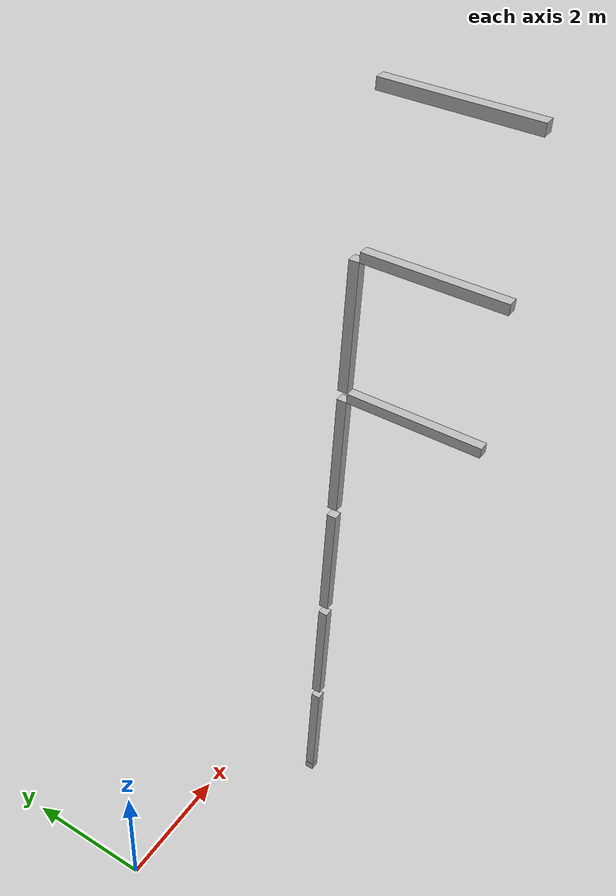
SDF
<sdf version="1.7">
 <world name="default">
  <model name="orthogonal_747_2.000.15_TS">
   <static>1</static>
   <link name="u_link_0_2_5">
    <inertial>
     <mass>1</mass>
     <inertia>
      <ixx>0.166667</ixx>
      <ixy>0</ixy>
      <ixz>0</ixz>
      <iyy>0.166667</iyy>
      <iyz>0</iyz>
      <izz>0.166667</izz>
     </inertia>
    </inertial>
    <pose>10.75 4.3 1.075 0 -0 0</pose>
    <visual name="visual_0">
     <laser_retro>442</laser_retro>
     <geometry><box><size>0.15 1e-06 0.15</size></box></geometry>
     <material>
      <script><name>Gazebo/Grey</name><uri>file://media/materials/scripts/gazebo.material</uri></script>
      <shader type="pixel"><normal_map>__default__</normal_map></shader>
      <ambient>0.678 0.498 0.659 1</ambient>
      <diffuse>0.7 0.7 0.7 1</diffuse>
      <specular>0.01 0.01 0.01 1</specular>
      <emissive>0 0 0 1</emissive>
     </material>
     <pose>0 -0.075 0 0 -0 0</pose>
     <transparency>1</transparency>
    </visual>
    <visual name="visual_1">
     <laser_retro>443</laser_retro>
     <geometry><box><size>0.15 1e-06 0.15</size></box></geometry>
     <material>
      <script><name>Gazebo/Grey</name><uri>file://media/materials/scripts/gazebo.material</uri></script>
      <shader type="pixel"><normal_map>__default__</normal_map></shader>
      <ambient>0.447 0.624 0.812 1</ambient>
      <diffuse>0.7 0.7 0.7 1</diffuse>
      <specular>0.01 0.01 0.01 1</specular>
      <emissive>0 0 0 1</emissive>
     </material>
     <pose>0 0.075 0 0 -0 0</pose>
     <transparency>1</transparency>
    </visual>
    <visual name="visual_2">
     <laser_retro>444</laser_retro>
     <geometry><box><size>0.15 0.15 1e-06</size></box></geometry>
     <material>
      <script><name>Gazebo/Grey</name><uri>file://media/materials/scripts/gazebo.material</uri></script>
      <shader type="pixel"><normal_map>__default__</normal_map></shader>
      <ambient>0.988 0.686 0.243 1</ambient>
      <diffuse>0.7 0.7 0.7 1</diffuse>
      <specular>0.01 0.01 0.01 1</specular>
      <emissive>0 0 0 1</emissive>
     </material>
     <pose>0 0 -0.075 0 -0 0</pose>
     <transparency>1</transparency>
    </visual>
    <visual name="visual_3">
     <laser_retro>445</laser_retro>
     <geometry><box><size>1e-06 0.15 0.15</size></box></geometry>
     <material>
      <script><name>Gazebo/Grey</name><uri>file://media/materials/scripts/gazebo.material</uri></script>
      <shader type="pixel"><normal_map>__default__</normal_map></shader>
      <ambient>0.988 0.914 0.31 1</ambient>
      <diffuse>0.7 0.7 0.7 1</diffuse>
      <specular>0.01 0.01 0.01 1</specular>
      <emissive>0 0 0 1</emissive>
     </material>
     <pose>0.075 0 0 0 -0 0</pose>
     <transparency>1</transparency>
    </visual>
    <visual name="visual_4">
     <laser_retro>446</laser_retro>
     <geometry><box><size>0.15 0.15 1e-06</size></box></geometry>
     <material>
      <script><name>Gazebo/Grey</name><uri>file://media/materials/scripts/gazebo.material</uri></script>
      <shader type="pixel"><normal_map>__default__</normal_map></shader>
      <ambient>0.937 0.161 0.161 1</ambient>
      <diffuse>0.7 0.7 0.7 1</diffuse>
      <specular>0.01 0.01 0.01 1</specular>
      <emissive>0 0 0 1</emissive>
     </material>
     <pose>0 0 0.075 0 -0 0</pose>
     <transparency>1</transparency>
    </visual>
    <visual name="visual_5">
     <laser_retro>447</laser_retro>
     <geometry><box><size>1e-06 0.15 0.15</size></box></geometry>
     <material>
      <script><name>Gazebo/Grey</name><uri>file://media/materials/scripts/gazebo.material</uri></script>
      <shader type="pixel"><normal_map>__default__</normal_map></shader>
      <ambient>0.541 0.886 0.204 1</ambient>
      <diffuse>0.7 0.7 0.7 1</diffuse>
      <specular>0.01 0.01 0.01 1</specular>
      <emissive>0 0 0 1</emissive>
     </material>
     <pose>-0.075 0 0 0 -0 0</pose>
     <transparency>1</transparency>
    </visual>
    <visual name="visual_texture">
     <geometry><box><size>0.149985 0.149985 0.149985</size></box></geometry>
     <material>
      <script>
       <uri>model://BASE_MODELS/simple_block_v2_textured/materials/scripts</uri>
       <uri>model://BASE_MODELS/simple_block_v2_textured/materials/textures</uri>
       <name>metal</name>
      </script>
     </material>
     <laser_retro>448</laser_retro>
    </visual>
    <collision name="collision">
     <geometry><box><size>0.15 0.15 0.15</size></box></geometry>
     <surface>
      <friction>
       <ode><mu>1</mu><mu2>1</mu2><fdir1>0 0 0</fdir1><slip1>0</slip1><slip2>0</slip2></ode>
       <torsional>
        <coefficient>1</coefficient>
        <patch_radius>0</patch_radius>
        <surface_radius>0</surface_radius>
        <use_patch_radius>1</use_patch_radius>
        <ode><slip>0</slip></ode>
       </torsional>
      </friction>
      <bounce><restitution_coefficient>0</restitution_coefficient><threshold>1e+06</threshold></bounce>
      <contact>
       <collide_without_contact>0</collide_without_contact>
       <collide_without_contact_bitmask>1</collide_without_contact_bitmask>
       <collide_bitmask>1</collide_bitmask>
       <ode>
        <soft_cfm>0</soft_cfm>
        <soft_erp>0.2</soft_erp>
        <kp>1e+13</kp>
        <kd>1</kd>
        <max_vel>0.01</max_vel>
        <min_depth>0</min_depth>
       </ode>
       <bullet>
        <split_impulse>1</split_impulse>
        <split_impulse_penetration_threshold>-0.01</split_impulse_penetration_threshold>
        <soft_cfm>0</soft_cfm>
        <soft_erp>0.2</soft_erp>
        <kp>1e+13</kp>
        <kd>1</kd>
       </bullet>
      </contact>
     </surface>
    </collision>
   </link>
   <link name="z_link_1_2_5">
    <inertial>
     <mass>1</mass>
     <inertia>
      <ixx>0.166667</ixx>
      <ixy>0</ixy>
      <ixz>0</ixz>
      <iyy>0.166667</iyy>
      <iyz>0</iyz>
      <izz>0.166667</izz>
     </inertia>
    </inertial>
    <pose>10.75 4.3 2.15 0 -0 0</pose>
    <visual name="visual_0">
     <laser_retro>1268</laser_retro>
     <geometry><box><size>0.15 1e-06 2</size></box></geometry>
     <material>
      <script><name>Gazebo/Grey</name><uri>file://media/materials/scripts/gazebo.material</uri></script>
      <shader type="pixel"><normal_map>__default__</normal_map></shader>
      <ambient>0.678 0.498 0.659 1</ambient>
      <diffuse>0.7 0.7 0.7 1</diffuse>
      <specular>0.01 0.01 0.01 1</specular>
      <emissive>0 0 0 1</emissive>
     </material>
     <pose>0 -0.075 0 0 -0 0</pose>
     <transparency>1</transparency>
    </visual>
    <visual name="visual_1">
     <laser_retro>1269</laser_retro>
     <geometry><box><size>0.15 1e-06 2</size></box></geometry>
     <material>
      <script><name>Gazebo/Grey</name><uri>file://media/materials/scripts/gazebo.material</uri></script>
      <shader type="pixel"><normal_map>__default__</normal_map></shader>
      <ambient>0.447 0.624 0.812 1</ambient>
      <diffuse>0.7 0.7 0.7 1</diffuse>
      <specular>0.01 0.01 0.01 1</specular>
      <emissive>0 0 0 1</emissive>
     </material>
     <pose>0 0.075 0 0 -0 0</pose>
     <transparency>1</transparency>
    </visual>
    <visual name="visual_2">
     <laser_retro>1270</laser_retro>
     <geometry><box><size>0.15 0.15 1e-06</size></box></geometry>
     <material>
      <script><name>Gazebo/Grey</name><uri>file://media/materials/scripts/gazebo.material</uri></script>
      <shader type="pixel"><normal_map>__default__</normal_map></shader>
      <ambient>0.988 0.686 0.243 1</ambient>
      <diffuse>0.7 0.7 0.7 1</diffuse>
      <specular>0.01 0.01 0.01 1</specular>
      <emissive>0 0 0 1</emissive>
     </material>
     <pose>0 0 -1 0 -0 0</pose>
     <transparency>1</transparency>
    </visual>
    <visual name="visual_3">
     <laser_retro>1271</laser_retro>
     <geometry><box><size>1e-06 0.15 2</size></box></geometry>
     <material>
      <script><name>Gazebo/Grey</name><uri>file://media/materials/scripts/gazebo.material</uri></script>
      <shader type="pixel"><normal_map>__default__</normal_map></shader>
      <ambient>0.988 0.914 0.31 1</ambient>
      <diffuse>0.7 0.7 0.7 1</diffuse>
      <specular>0.01 0.01 0.01 1</specular>
      <emissive>0 0 0 1</emissive>
     </material>
     <pose>0.075 0 0 0 -0 0</pose>
     <transparency>1</transparency>
    </visual>
    <visual name="visual_4">
     <laser_retro>1272</laser_retro>
     <geometry><box><size>0.15 0.15 1e-06</size></box></geometry>
     <material>
      <script><name>Gazebo/Grey</name><uri>file://media/materials/scripts/gazebo.material</uri></script>
      <shader type="pixel"><normal_map>__default__</normal_map></shader>
      <ambient>0.937 0.161 0.161 1</ambient>
      <diffuse>0.7 0.7 0.7 1</diffuse>
      <specular>0.01 0.01 0.01 1</specular>
      <emissive>0 0 0 1</emissive>
     </material>
     <pose>0 0 1 0 -0 0</pose>
     <transparency>1</transparency>
    </visual>
    <visual name="visual_5">
     <laser_retro>1273</laser_retro>
     <geometry><box><size>1e-06 0.15 2</size></box></geometry>
     <material>
      <script><name>Gazebo/Grey</name><uri>file://media/materials/scripts/gazebo.material</uri></script>
      <shader type="pixel"><normal_map>__default__</normal_map></shader>
      <ambient>0.541 0.886 0.204 1</ambient>
      <diffuse>0.7 0.7 0.7 1</diffuse>
      <specular>0.01 0.01 0.01 1</specular>
      <emissive>0 0 0 1</emissive>
     </material>
     <pose>-0.075 0 0 0 -0 0</pose>
     <transparency>1</transparency>
    </visual>
    <visual name="visual_texture">
     <geometry><box><size>0.149985 0.149985 1.9998</size></box></geometry>
     <material>
      <script>
       <uri>model://BASE_MODELS/simple_block_v2_textured/materials/scripts</uri>
       <uri>model://BASE_MODELS/simple_block_v2_textured/materials/textures</uri>
       <name>metal</name>
      </script>
     </material>
     <laser_retro>1274</laser_retro>
    </visual>
    <collision name="collision">
     <geometry><box><size>0.15 0.15 2</size></box></geometry>
     <surface>
      <friction>
       <ode><mu>1</mu><mu2>1</mu2><fdir1>0 0 0</fdir1><slip1>0</slip1><slip2>0</slip2></ode>
       <torsional>
        <coefficient>1</coefficient>
        <patch_radius>0</patch_radius>
        <surface_radius>0</surface_radius>
        <use_patch_radius>1</use_patch_radius>
        <ode><slip>0</slip></ode>
       </torsional>
      </friction>
      <bounce><restitution_coefficient>0</restitution_coefficient><threshold>1e+06</threshold></bounce>
      <contact>
       <collide_without_contact>0</collide_without_contact>
       <collide_without_contact_bitmask>1</collide_without_contact_bitmask>
       <collide_bitmask>1</collide_bitmask>
       <ode>
        <soft_cfm>0</soft_cfm>
        <soft_erp>0.2</soft_erp>
        <kp>1e+13</kp>
        <kd>1</kd>
        <max_vel>0.01</max_vel>
        <min_depth>0</min_depth>
       </ode>
       <bullet>
        <split_impulse>1</split_impulse>
        <split_impulse_penetration_threshold>-0.01</split_impulse_penetration_threshold>
        <soft_cfm>0</soft_cfm>
        <soft_erp>0.2</soft_erp>
        <kp>1e+13</kp>
        <kd>1</kd>
       </bullet>
      </contact>
     </surface>
    </collision>
   </link>
   <link name="z_link_2_2_5">
    <inertial>
     <mass>1</mass>
     <inertia>
      <ixx>0.166667</ixx>
      <ixy>0</ixy>
      <ixz>0</ixz>
      <iyy>0.166667</iyy>
      <iyz>0</iyz>
      <izz>0.166667</izz>
     </inertia>
    </inertial>
    <pose>10.75 4.3 4.3 0 -0 0</pose>
    <visual name="visual_0">
     <laser_retro>2171</laser_retro>
     <geometry><box><size>0.15 1e-06 2</size></box></geometry>
     <material>
      <script><name>Gazebo/Grey</name><uri>file://media/materials/scripts/gazebo.material</uri></script>
      <shader type="pixel"><normal_map>__default__</normal_map></shader>
      <ambient>0.678 0.498 0.659 1</ambient>
      <diffuse>0.7 0.7 0.7 1</diffuse>
      <specular>0.01 0.01 0.01 1</specular>
      <emissive>0 0 0 1</emissive>
     </material>
     <pose>0 -0.075 0 0 -0 0</pose>
     <transparency>1</transparency>
    </visual>
    <visual name="visual_1">
     <laser_retro>2172</laser_retro>
     <geometry><box><size>0.15 1e-06 2</size></box></geometry>
     <material>
      <script><name>Gazebo/Grey</name><uri>file://media/materials/scripts/gazebo.material</uri></script>
      <shader type="pixel"><normal_map>__default__</normal_map></shader>
      <ambient>0.447 0.624 0.812 1</ambient>
      <diffuse>0.7 0.7 0.7 1</diffuse>
      <specular>0.01 0.01 0.01 1</specular>
      <emissive>0 0 0 1</emissive>
     </material>
     <pose>0 0.075 0 0 -0 0</pose>
     <transparency>1</transparency>
    </visual>
    <visual name="visual_2">
     <laser_retro>2173</laser_retro>
     <geometry><box><size>0.15 0.15 1e-06</size></box></geometry>
     <material>
      <script><name>Gazebo/Grey</name><uri>file://media/materials/scripts/gazebo.material</uri></script>
      <shader type="pixel"><normal_map>__default__</normal_map></shader>
      <ambient>0.988 0.686 0.243 1</ambient>
      <diffuse>0.7 0.7 0.7 1</diffuse>
      <specular>0.01 0.01 0.01 1</specular>
      <emissive>0 0 0 1</emissive>
     </material>
     <pose>0 0 -1 0 -0 0</pose>
     <transparency>1</transparency>
    </visual>
    <visual name="visual_3">
     <laser_retro>2174</laser_retro>
     <geometry><box><size>1e-06 0.15 2</size></box></geometry>
     <material>
      <script><name>Gazebo/Grey</name><uri>file://media/materials/scripts/gazebo.material</uri></script>
      <shader type="pixel"><normal_map>__default__</normal_map></shader>
      <ambient>0.988 0.914 0.31 1</ambient>
      <diffuse>0.7 0.7 0.7 1</diffuse>
      <specular>0.01 0.01 0.01 1</specular>
      <emissive>0 0 0 1</emissive>
     </material>
     <pose>0.075 0 0 0 -0 0</pose>
     <transparency>1</transparency>
    </visual>
    <visual name="visual_4">
     <laser_retro>2175</laser_retro>
     <geometry><box><size>0.15 0.15 1e-06</size></box></geometry>
     <material>
      <script><name>Gazebo/Grey</name><uri>file://media/materials/scripts/gazebo.material</uri></script>
      <shader type="pixel"><normal_map>__default__</normal_map></shader>
      <ambient>0.937 0.161 0.161 1</ambient>
      <diffuse>0.7 0.7 0.7 1</diffuse>
      <specular>0.01 0.01 0.01 1</specular>
      <emissive>0 0 0 1</emissive>
     </material>
     <pose>0 0 1 0 -0 0</pose>
     <transparency>1</transparency>
    </visual>
    <visual name="visual_5">
     <laser_retro>2176</laser_retro>
     <geometry><box><size>1e-06 0.15 2</size></box></geometry>
     <material>
      <script><name>Gazebo/Grey</name><uri>file://media/materials/scripts/gazebo.material</uri></script>
      <shader type="pixel"><normal_map>__default__</normal_map></shader>
      <ambient>0.541 0.886 0.204 1</ambient>
      <diffuse>0.7 0.7 0.7 1</diffuse>
      <specular>0.01 0.01 0.01 1</specular>
      <emissive>0 0 0 1</emissive>
     </material>
     <pose>-0.075 0 0 0 -0 0</pose>
     <transparency>1</transparency>
    </visual>
    <visual name="visual_texture">
     <geometry><box><size>0.149985 0.149985 1.9998</size></box></geometry>
     <material>
      <script>
       <uri>model://BASE_MODELS/simple_block_v2_textured/materials/scripts</uri>
       <uri>model://BASE_MODELS/simple_block_v2_textured/materials/textures</uri>
       <name>metal</name>
      </script>
     </material>
     <laser_retro>2177</laser_retro>
    </visual>
    <collision name="collision">
     <geometry><box><size>0.15 0.15 2</size></box></geometry>
     <surface>
      <friction>
       <ode><mu>1</mu><mu2>1</mu2><fdir1>0 0 0</fdir1><slip1>0</slip1><slip2>0</slip2></ode>
       <torsional>
        <coefficient>1</coefficient>
        <patch_radius>0</patch_radius>
        <surface_radius>0</surface_radius>
        <use_patch_radius>1</use_patch_radius>
        <ode><slip>0</slip></ode>
       </torsional>
      </friction>
      <bounce><restitution_coefficient>0</restitution_coefficient><threshold>1e+06</threshold></bounce>
      <contact>
       <collide_without_contact>0</collide_without_contact>
       <collide_without_contact_bitmask>1</collide_without_contact_bitmask>
       <collide_bitmask>1</collide_bitmask>
       <ode>
        <soft_cfm>0</soft_cfm>
        <soft_erp>0.2</soft_erp>
        <kp>1e+13</kp>
        <kd>1</kd>
        <max_vel>0.01</max_vel>
        <min_depth>0</min_depth>
       </ode>
       <bullet>
        <split_impulse>1</split_impulse>
        <split_impulse_penetration_threshold>-0.01</split_impulse_penetration_threshold>
        <soft_cfm>0</soft_cfm>
        <soft_erp>0.2</soft_erp>
        <kp>1e+13</kp>
        <kd>1</kd>
       </bullet>
      </contact>
     </surface>
    </collision>
   </link>
   <link name="z_link_3_2_5">
    <inertial>
     <mass>1</mass>
     <inertia>
      <ixx>0.166667</ixx>
      <ixy>0</ixy>
      <ixz>0</ixz>
      <iyy>0.166667</iyy>
      <iyz>0</iyz>
      <izz>0.166667</izz>
     </inertia>
    </inertial>
    <pose>10.75 4.3 6.45 0 -0 0</pose>
    <visual name="visual_0">
     <laser_retro>3074</laser_retro>
     <geometry><box><size>0.15 1e-06 2</size></box></geometry>
     <material>
      <script><name>Gazebo/Grey</name><uri>file://media/materials/scripts/gazebo.material</uri></script>
      <shader type="pixel"><normal_map>__default__</normal_map></shader>
      <ambient>0.678 0.498 0.659 1</ambient>
      <diffuse>0.7 0.7 0.7 1</diffuse>
      <specular>0.01 0.01 0.01 1</specular>
      <emissive>0 0 0 1</emissive>
     </material>
     <pose>0 -0.075 0 0 -0 0</pose>
     <transparency>1</transparency>
    </visual>
    <visual name="visual_1">
     <laser_retro>3075</laser_retro>
     <geometry><box><size>0.15 1e-06 2</size></box></geometry>
     <material>
      <script><name>Gazebo/Grey</name><uri>file://media/materials/scripts/gazebo.material</uri></script>
      <shader type="pixel"><normal_map>__default__</normal_map></shader>
      <ambient>0.447 0.624 0.812 1</ambient>
      <diffuse>0.7 0.7 0.7 1</diffuse>
      <specular>0.01 0.01 0.01 1</specular>
      <emissive>0 0 0 1</emissive>
     </material>
     <pose>0 0.075 0 0 -0 0</pose>
     <transparency>1</transparency>
    </visual>
    <visual name="visual_2">
     <laser_retro>3076</laser_retro>
     <geometry><box><size>0.15 0.15 1e-06</size></box></geometry>
     <material>
      <script><name>Gazebo/Grey</name><uri>file://media/materials/scripts/gazebo.material</uri></script>
      <shader type="pixel"><normal_map>__default__</normal_map></shader>
      <ambient>0.988 0.686 0.243 1</ambient>
      <diffuse>0.7 0.7 0.7 1</diffuse>
      <specular>0.01 0.01 0.01 1</specular>
      <emissive>0 0 0 1</emissive>
     </material>
     <pose>0 0 -1 0 -0 0</pose>
     <transparency>1</transparency>
    </visual>
    <visual name="visual_3">
     <laser_retro>3077</laser_retro>
     <geometry><box><size>1e-06 0.15 2</size></box></geometry>
     <material>
      <script><name>Gazebo/Grey</name><uri>file://media/materials/scripts/gazebo.material</uri></script>
      <shader type="pixel"><normal_map>__default__</normal_map></shader>
      <ambient>0.988 0.914 0.31 1</ambient>
      <diffuse>0.7 0.7 0.7 1</diffuse>
      <specular>0.01 0.01 0.01 1</specular>
      <emissive>0 0 0 1</emissive>
     </material>
     <pose>0.075 0 0 0 -0 0</pose>
     <transparency>1</transparency>
    </visual>
    <visual name="visual_4">
     <laser_retro>3078</laser_retro>
     <geometry><box><size>0.15 0.15 1e-06</size></box></geometry>
     <material>
      <script><name>Gazebo/Grey</name><uri>file://media/materials/scripts/gazebo.material</uri></script>
      <shader type="pixel"><normal_map>__default__</normal_map></shader>
      <ambient>0.937 0.161 0.161 1</ambient>
      <diffuse>0.7 0.7 0.7 1</diffuse>
      <specular>0.01 0.01 0.01 1</specular>
      <emissive>0 0 0 1</emissive>
     </material>
     <pose>0 0 1 0 -0 0</pose>
     <transparency>1</transparency>
    </visual>
    <visual name="visual_5">
     <laser_retro>3079</laser_retro>
     <geometry><box><size>1e-06 0.15 2</size></box></geometry>
     <material>
      <script><name>Gazebo/Grey</name><uri>file://media/materials/scripts/gazebo.material</uri></script>
      <shader type="pixel"><normal_map>__default__</normal_map></shader>
      <ambient>0.541 0.886 0.204 1</ambient>
      <diffuse>0.7 0.7 0.7 1</diffuse>
      <specular>0.01 0.01 0.01 1</specular>
      <emissive>0 0 0 1</emissive>
     </material>
     <pose>-0.075 0 0 0 -0 0</pose>
     <transparency>1</transparency>
    </visual>
    <visual name="visual_texture">
     <geometry><box><size>0.149985 0.149985 1.9998</size></box></geometry>
     <material>
      <script>
       <uri>model://BASE_MODELS/simple_block_v2_textured/materials/scripts</uri>
       <uri>model://BASE_MODELS/simple_block_v2_textured/materials/textures</uri>
       <name>metal</name>
      </script>
     </material>
     <laser_retro>3080</laser_retro>
    </visual>
    <collision name="collision">
     <geometry><box><size>0.15 0.15 2</size></box></geometry>
     <surface>
      <friction>
       <ode><mu>1</mu><mu2>1</mu2><fdir1>0 0 0</fdir1><slip1>0</slip1><slip2>0</slip2></ode>
       <torsional>
        <coefficient>1</coefficient>
        <patch_radius>0</patch_radius>
        <surface_radius>0</surface_radius>
        <use_patch_radius>1</use_patch_radius>
        <ode><slip>0</slip></ode>
       </torsional>
      </friction>
      <bounce><restitution_coefficient>0</restitution_coefficient><threshold>1e+06</threshold></bounce>
      <contact>
       <collide_without_contact>0</collide_without_contact>
       <collide_without_contact_bitmask>1</collide_without_contact_bitmask>
       <collide_bitmask>1</collide_bitmask>
       <ode>
        <soft_cfm>0</soft_cfm>
        <soft_erp>0.2</soft_erp>
        <kp>1e+13</kp>
        <kd>1</kd>
        <max_vel>0.01</max_vel>
        <min_depth>0</min_depth>
       </ode>
       <bullet>
        <split_impulse>1</split_impulse>
        <split_impulse_penetration_threshold>-0.01</split_impulse_penetration_threshold>
        <soft_cfm>0</soft_cfm>
        <soft_erp>0.2</soft_erp>
        <kp>1e+13</kp>
        <kd>1</kd>
       </bullet>
      </contact>
     </surface>
    </collision>
   </link>
   <link name="y_link_4_1_5">
    <inertial>
     <mass>1</mass>
     <inertia>
      <ixx>0.166667</ixx>
      <ixy>0</ixy>
      <ixz>0</ixz>
      <iyy>0.166667</iyy>
      <iyz>0</iyz>
      <izz>0.166667</izz>
     </inertia>
    </inertial>
    <pose>10.75 3.225 9.675 0 -0 0</pose>
    <visual name="visual_0">
     <laser_retro>3795</laser_retro>
     <geometry><box><size>0.15 1e-06 0.15</size></box></geometry>
     <material>
      <script><name>Gazebo/Grey</name><uri>file://media/materials/scripts/gazebo.material</uri></script>
      <shader type="pixel"><normal_map>__default__</normal_map></shader>
      <ambient>0.678 0.498 0.659 1</ambient>
      <diffuse>0.7 0.7 0.7 1</diffuse>
      <specular>0.01 0.01 0.01 1</specular>
      <emissive>0 0 0 1</emissive>
     </material>
     <pose>0 -1 0 0 -0 0</pose>
     <transparency>1</transparency>
    </visual>
    <visual name="visual_1">
     <laser_retro>3796</laser_retro>
     <geometry><box><size>0.15 1e-06 0.15</size></box></geometry>
     <material>
      <script><name>Gazebo/Grey</name><uri>file://media/materials/scripts/gazebo.material</uri></script>
      <shader type="pixel"><normal_map>__default__</normal_map></shader>
      <ambient>0.447 0.624 0.812 1</ambient>
      <diffuse>0.7 0.7 0.7 1</diffuse>
      <specular>0.01 0.01 0.01 1</specular>
      <emissive>0 0 0 1</emissive>
     </material>
     <pose>0 1 0 0 -0 0</pose>
     <transparency>1</transparency>
    </visual>
    <visual name="visual_2">
     <laser_retro>3797</laser_retro>
     <geometry><box><size>0.15 2 1e-06</size></box></geometry>
     <material>
      <script><name>Gazebo/Grey</name><uri>file://media/materials/scripts/gazebo.material</uri></script>
      <shader type="pixel"><normal_map>__default__</normal_map></shader>
      <ambient>0.988 0.686 0.243 1</ambient>
      <diffuse>0.7 0.7 0.7 1</diffuse>
      <specular>0.01 0.01 0.01 1</specular>
      <emissive>0 0 0 1</emissive>
     </material>
     <pose>0 0 -0.075 0 -0 0</pose>
     <transparency>1</transparency>
    </visual>
    <visual name="visual_3">
     <laser_retro>3798</laser_retro>
     <geometry><box><size>1e-06 2 0.15</size></box></geometry>
     <material>
      <script><name>Gazebo/Grey</name><uri>file://media/materials/scripts/gazebo.material</uri></script>
      <shader type="pixel"><normal_map>__default__</normal_map></shader>
      <ambient>0.988 0.914 0.31 1</ambient>
      <diffuse>0.7 0.7 0.7 1</diffuse>
      <specular>0.01 0.01 0.01 1</specular>
      <emissive>0 0 0 1</emissive>
     </material>
     <pose>0.075 0 0 0 -0 0</pose>
     <transparency>1</transparency>
    </visual>
    <visual name="visual_4">
     <laser_retro>3799</laser_retro>
     <geometry><box><size>0.15 2 1e-06</size></box></geometry>
     <material>
      <script><name>Gazebo/Grey</name><uri>file://media/materials/scripts/gazebo.material</uri></script>
      <shader type="pixel"><normal_map>__default__</normal_map></shader>
      <ambient>0.937 0.161 0.161 1</ambient>
      <diffuse>0.7 0.7 0.7 1</diffuse>
      <specular>0.01 0.01 0.01 1</specular>
      <emissive>0 0 0 1</emissive>
     </material>
     <pose>0 0 0.075 0 -0 0</pose>
     <transparency>1</transparency>
    </visual>
    <visual name="visual_5">
     <laser_retro>3800</laser_retro>
     <geometry><box><size>1e-06 2 0.15</size></box></geometry>
     <material>
      <script><name>Gazebo/Grey</name><uri>file://media/materials/scripts/gazebo.material</uri></script>
      <shader type="pixel"><normal_map>__default__</normal_map></shader>
      <ambient>0.541 0.886 0.204 1</ambient>
      <diffuse>0.7 0.7 0.7 1</diffuse>
      <specular>0.01 0.01 0.01 1</specular>
      <emissive>0 0 0 1</emissive>
     </material>
     <pose>-0.075 0 0 0 -0 0</pose>
     <transparency>1</transparency>
    </visual>
    <visual name="visual_texture">
     <geometry><box><size>0.149985 1.9998 0.149985</size></box></geometry>
     <material>
      <script>
       <uri>model://BASE_MODELS/simple_block_v2_textured/materials/scripts</uri>
       <uri>model://BASE_MODELS/simple_block_v2_textured/materials/textures</uri>
       <name>metal</name>
      </script>
     </material>
     <laser_retro>3801</laser_retro>
    </visual>
    <collision name="collision">
     <geometry><box><size>0.15 2 0.15</size></box></geometry>
     <surface>
      <friction>
       <ode><mu>1</mu><mu2>1</mu2><fdir1>0 0 0</fdir1><slip1>0</slip1><slip2>0</slip2></ode>
       <torsional>
        <coefficient>1</coefficient>
        <patch_radius>0</patch_radius>
        <surface_radius>0</surface_radius>
        <use_patch_radius>1</use_patch_radius>
        <ode><slip>0</slip></ode>
       </torsional>
      </friction>
      <bounce><restitution_coefficient>0</restitution_coefficient><threshold>1e+06</threshold></bounce>
      <contact>
       <collide_without_contact>0</collide_without_contact>
       <collide_without_contact_bitmask>1</collide_without_contact_bitmask>
       <collide_bitmask>1</collide_bitmask>
       <ode>
        <soft_cfm>0</soft_cfm>
        <soft_erp>0.2</soft_erp>
        <kp>1e+13</kp>
        <kd>1</kd>
        <max_vel>0.01</max_vel>
        <min_depth>0</min_depth>
       </ode>
       <bullet>
        <split_impulse>1</split_impulse>
        <split_impulse_penetration_threshold>-0.01</split_impulse_penetration_threshold>
        <soft_cfm>0</soft_cfm>
        <soft_erp>0.2</soft_erp>
        <kp>1e+13</kp>
        <kd>1</kd>
       </bullet>
      </contact>
     </surface>
    </collision>
   </link>
   <link name="z_link_4_2_5">
    <inertial>
     <mass>1</mass>
     <inertia>
      <ixx>0.166667</ixx>
      <ixy>0</ixy>
      <ixz>0</ixz>
      <iyy>0.166667</iyy>
      <iyz>0</iyz>
      <izz>0.166667</izz>
     </inertia>
    </inertial>
    <pose>10.75 4.3 8.6 0 -0 0</pose>
    <visual name="visual_0">
     <laser_retro>3977</laser_retro>
     <geometry><box><size>0.15 1e-06 2</size></box></geometry>
     <material>
      <script><name>Gazebo/Grey</name><uri>file://media/materials/scripts/gazebo.material</uri></script>
      <shader type="pixel"><normal_map>__default__</normal_map></shader>
      <ambient>0.678 0.498 0.659 1</ambient>
      <diffuse>0.7 0.7 0.7 1</diffuse>
      <specular>0.01 0.01 0.01 1</specular>
      <emissive>0 0 0 1</emissive>
     </material>
     <pose>0 -0.075 0 0 -0 0</pose>
     <transparency>1</transparency>
    </visual>
    <visual name="visual_1">
     <laser_retro>3978</laser_retro>
     <geometry><box><size>0.15 1e-06 2</size></box></geometry>
     <material>
      <script><name>Gazebo/Grey</name><uri>file://media/materials/scripts/gazebo.material</uri></script>
      <shader type="pixel"><normal_map>__default__</normal_map></shader>
      <ambient>0.447 0.624 0.812 1</ambient>
      <diffuse>0.7 0.7 0.7 1</diffuse>
      <specular>0.01 0.01 0.01 1</specular>
      <emissive>0 0 0 1</emissive>
     </material>
     <pose>0 0.075 0 0 -0 0</pose>
     <transparency>1</transparency>
    </visual>
    <visual name="visual_2">
     <laser_retro>3979</laser_retro>
     <geometry><box><size>0.15 0.15 1e-06</size></box></geometry>
     <material>
      <script><name>Gazebo/Grey</name><uri>file://media/materials/scripts/gazebo.material</uri></script>
      <shader type="pixel"><normal_map>__default__</normal_map></shader>
      <ambient>0.988 0.686 0.243 1</ambient>
      <diffuse>0.7 0.7 0.7 1</diffuse>
      <specular>0.01 0.01 0.01 1</specular>
      <emissive>0 0 0 1</emissive>
     </material>
     <pose>0 0 -1 0 -0 0</pose>
     <transparency>1</transparency>
    </visual>
    <visual name="visual_3">
     <laser_retro>3980</laser_retro>
     <geometry><box><size>1e-06 0.15 2</size></box></geometry>
     <material>
      <script><name>Gazebo/Grey</name><uri>file://media/materials/scripts/gazebo.material</uri></script>
      <shader type="pixel"><normal_map>__default__</normal_map></shader>
      <ambient>0.988 0.914 0.31 1</ambient>
      <diffuse>0.7 0.7 0.7 1</diffuse>
      <specular>0.01 0.01 0.01 1</specular>
      <emissive>0 0 0 1</emissive>
     </material>
     <pose>0.075 0 0 0 -0 0</pose>
     <transparency>1</transparency>
    </visual>
    <visual name="visual_4">
     <laser_retro>3981</laser_retro>
     <geometry><box><size>0.15 0.15 1e-06</size></box></geometry>
     <material>
      <script><name>Gazebo/Grey</name><uri>file://media/materials/scripts/gazebo.material</uri></script>
      <shader type="pixel"><normal_map>__default__</normal_map></shader>
      <ambient>0.937 0.161 0.161 1</ambient>
      <diffuse>0.7 0.7 0.7 1</diffuse>
      <specular>0.01 0.01 0.01 1</specular>
      <emissive>0 0 0 1</emissive>
     </material>
     <pose>0 0 1 0 -0 0</pose>
     <transparency>1</transparency>
    </visual>
    <visual name="visual_5">
     <laser_retro>3982</laser_retro>
     <geometry><box><size>1e-06 0.15 2</size></box></geometry>
     <material>
      <script><name>Gazebo/Grey</name><uri>file://media/materials/scripts/gazebo.material</uri></script>
      <shader type="pixel"><normal_map>__default__</normal_map></shader>
      <ambient>0.541 0.886 0.204 1</ambient>
      <diffuse>0.7 0.7 0.7 1</diffuse>
      <specular>0.01 0.01 0.01 1</specular>
      <emissive>0 0 0 1</emissive>
     </material>
     <pose>-0.075 0 0 0 -0 0</pose>
     <transparency>1</transparency>
    </visual>
    <visual name="visual_texture">
     <geometry><box><size>0.149985 0.149985 1.9998</size></box></geometry>
     <material>
      <script>
       <uri>model://BASE_MODELS/simple_block_v2_textured/materials/scripts</uri>
       <uri>model://BASE_MODELS/simple_block_v2_textured/materials/textures</uri>
       <name>metal</name>
      </script>
     </material>
     <laser_retro>3983</laser_retro>
    </visual>
    <collision name="collision">
     <geometry><box><size>0.15 0.15 2</size></box></geometry>
     <surface>
      <friction>
       <ode><mu>1</mu><mu2>1</mu2><fdir1>0 0 0</fdir1><slip1>0</slip1><slip2>0</slip2></ode>
       <torsional>
        <coefficient>1</coefficient>
        <patch_radius>0</patch_radius>
        <surface_radius>0</surface_radius>
        <use_patch_radius>1</use_patch_radius>
        <ode><slip>0</slip></ode>
       </torsional>
      </friction>
      <bounce><restitution_coefficient>0</restitution_coefficient><threshold>1e+06</threshold></bounce>
      <contact>
       <collide_without_contact>0</collide_without_contact>
       <collide_without_contact_bitmask>1</collide_without_contact_bitmask>
       <collide_bitmask>1</collide_bitmask>
       <ode>
        <soft_cfm>0</soft_cfm>
        <soft_erp>0.2</soft_erp>
        <kp>1e+13</kp>
        <kd>1</kd>
        <max_vel>0.01</max_vel>
        <min_depth>0</min_depth>
       </ode>
       <bullet>
        <split_impulse>1</split_impulse>
        <split_impulse_penetration_threshold>-0.01</split_impulse_penetration_threshold>
        <soft_cfm>0</soft_cfm>
        <soft_erp>0.2</soft_erp>
        <kp>1e+13</kp>
        <kd>1</kd>
       </bullet>
      </contact>
     </surface>
    </collision>
   </link>
   <link name="y_link_5_1_5">
    <inertial>
     <mass>1</mass>
     <inertia>
      <ixx>0.166667</ixx>
      <ixy>0</ixy>
      <ixz>0</ixz>
      <iyy>0.166667</iyy>
      <iyz>0</iyz>
      <izz>0.166667</izz>
     </inertia>
    </inertial>
    <pose>10.75 3.225 11.825 0 -0 0</pose>
    <visual name="visual_0">
     <laser_retro>4698</laser_retro>
     <geometry><box><size>0.15 1e-06 0.15</size></box></geometry>
     <material>
      <script><name>Gazebo/Grey</name><uri>file://media/materials/scripts/gazebo.material</uri></script>
      <shader type="pixel"><normal_map>__default__</normal_map></shader>
      <ambient>0.678 0.498 0.659 1</ambient>
      <diffuse>0.7 0.7 0.7 1</diffuse>
      <specular>0.01 0.01 0.01 1</specular>
      <emissive>0 0 0 1</emissive>
     </material>
     <pose>0 -1 0 0 -0 0</pose>
     <transparency>1</transparency>
    </visual>
    <visual name="visual_1">
     <laser_retro>4699</laser_retro>
     <geometry><box><size>0.15 1e-06 0.15</size></box></geometry>
     <material>
      <script><name>Gazebo/Grey</name><uri>file://media/materials/scripts/gazebo.material</uri></script>
      <shader type="pixel"><normal_map>__default__</normal_map></shader>
      <ambient>0.447 0.624 0.812 1</ambient>
      <diffuse>0.7 0.7 0.7 1</diffuse>
      <specular>0.01 0.01 0.01 1</specular>
      <emissive>0 0 0 1</emissive>
     </material>
     <pose>0 1 0 0 -0 0</pose>
     <transparency>1</transparency>
    </visual>
    <visual name="visual_2">
     <laser_retro>4700</laser_retro>
     <geometry><box><size>0.15 2 1e-06</size></box></geometry>
     <material>
      <script><name>Gazebo/Grey</name><uri>file://media/materials/scripts/gazebo.material</uri></script>
      <shader type="pixel"><normal_map>__default__</normal_map></shader>
      <ambient>0.988 0.686 0.243 1</ambient>
      <diffuse>0.7 0.7 0.7 1</diffuse>
      <specular>0.01 0.01 0.01 1</specular>
      <emissive>0 0 0 1</emissive>
     </material>
     <pose>0 0 -0.075 0 -0 0</pose>
     <transparency>1</transparency>
    </visual>
    <visual name="visual_3">
     <laser_retro>4701</laser_retro>
     <geometry><box><size>1e-06 2 0.15</size></box></geometry>
     <material>
      <script><name>Gazebo/Grey</name><uri>file://media/materials/scripts/gazebo.material</uri></script>
      <shader type="pixel"><normal_map>__default__</normal_map></shader>
      <ambient>0.988 0.914 0.31 1</ambient>
      <diffuse>0.7 0.7 0.7 1</diffuse>
      <specular>0.01 0.01 0.01 1</specular>
      <emissive>0 0 0 1</emissive>
     </material>
     <pose>0.075 0 0 0 -0 0</pose>
     <transparency>1</transparency>
    </visual>
    <visual name="visual_4">
     <laser_retro>4702</laser_retro>
     <geometry><box><size>0.15 2 1e-06</size></box></geometry>
     <material>
      <script><name>Gazebo/Grey</name><uri>file://media/materials/scripts/gazebo.material</uri></script>
      <shader type="pixel"><normal_map>__default__</normal_map></shader>
      <ambient>0.937 0.161 0.161 1</ambient>
      <diffuse>0.7 0.7 0.7 1</diffuse>
      <specular>0.01 0.01 0.01 1</specular>
      <emissive>0 0 0 1</emissive>
     </material>
     <pose>0 0 0.075 0 -0 0</pose>
     <transparency>1</transparency>
    </visual>
    <visual name="visual_5">
     <laser_retro>4703</laser_retro>
     <geometry><box><size>1e-06 2 0.15</size></box></geometry>
     <material>
      <script><name>Gazebo/Grey</name><uri>file://media/materials/scripts/gazebo.material</uri></script>
      <shader type="pixel"><normal_map>__default__</normal_map></shader>
      <ambient>0.541 0.886 0.204 1</ambient>
      <diffuse>0.7 0.7 0.7 1</diffuse>
      <specular>0.01 0.01 0.01 1</specular>
      <emissive>0 0 0 1</emissive>
     </material>
     <pose>-0.075 0 0 0 -0 0</pose>
     <transparency>1</transparency>
    </visual>
    <visual name="visual_texture">
     <geometry><box><size>0.149985 1.9998 0.149985</size></box></geometry>
     <material>
      <script>
       <uri>model://BASE_MODELS/simple_block_v2_textured/materials/scripts</uri>
       <uri>model://BASE_MODELS/simple_block_v2_textured/materials/textures</uri>
       <name>metal</name>
      </script>
     </material>
     <laser_retro>4704</laser_retro>
    </visual>
    <collision name="collision">
     <geometry><box><size>0.15 2 0.15</size></box></geometry>
     <surface>
      <friction>
       <ode><mu>1</mu><mu2>1</mu2><fdir1>0 0 0</fdir1><slip1>0</slip1><slip2>0</slip2></ode>
       <torsional>
        <coefficient>1</coefficient>
        <patch_radius>0</patch_radius>
        <surface_radius>0</surface_radius>
        <use_patch_radius>1</use_patch_radius>
        <ode><slip>0</slip></ode>
       </torsional>
      </friction>
      <bounce><restitution_coefficient>0</restitution_coefficient><threshold>1e+06</threshold></bounce>
      <contact>
       <collide_without_contact>0</collide_without_contact>
       <collide_without_contact_bitmask>1</collide_without_contact_bitmask>
       <collide_bitmask>1</collide_bitmask>
       <ode>
        <soft_cfm>0</soft_cfm>
        <soft_erp>0.2</soft_erp>
        <kp>1e+13</kp>
        <kd>1</kd>
        <max_vel>0.01</max_vel>
        <min_depth>0</min_depth>
       </ode>
       <bullet>
        <split_impulse>1</split_impulse>
        <split_impulse_penetration_threshold>-0.01</split_impulse_penetration_threshold>
        <soft_cfm>0</soft_cfm>
        <soft_erp>0.2</soft_erp>
        <kp>1e+13</kp>
        <kd>1</kd>
       </bullet>
      </contact>
     </surface>
    </collision>
   </link>
   <link name="z_link_5_2_5">
    <inertial>
     <mass>1</mass>
     <inertia>
      <ixx>0.166667</ixx>
      <ixy>0</ixy>
      <ixz>0</ixz>
      <iyy>0.166667</iyy>
      <iyz>0</iyz>
      <izz>0.166667</izz>
     </inertia>
    </inertial>
    <pose>10.75 4.3 10.75 0 -0 0</pose>
    <visual name="visual_0">
     <laser_retro>4880</laser_retro>
     <geometry><box><size>0.15 1e-06 2</size></box></geometry>
     <material>
      <script><name>Gazebo/Grey</name><uri>file://media/materials/scripts/gazebo.material</uri></script>
      <shader type="pixel"><normal_map>__default__</normal_map></shader>
      <ambient>0.678 0.498 0.659 1</ambient>
      <diffuse>0.7 0.7 0.7 1</diffuse>
      <specular>0.01 0.01 0.01 1</specular>
      <emissive>0 0 0 1</emissive>
     </material>
     <pose>0 -0.075 0 0 -0 0</pose>
     <transparency>1</transparency>
    </visual>
    <visual name="visual_1">
     <laser_retro>4881</laser_retro>
     <geometry><box><size>0.15 1e-06 2</size></box></geometry>
     <material>
      <script><name>Gazebo/Grey</name><uri>file://media/materials/scripts/gazebo.material</uri></script>
      <shader type="pixel"><normal_map>__default__</normal_map></shader>
      <ambient>0.447 0.624 0.812 1</ambient>
      <diffuse>0.7 0.7 0.7 1</diffuse>
      <specular>0.01 0.01 0.01 1</specular>
      <emissive>0 0 0 1</emissive>
     </material>
     <pose>0 0.075 0 0 -0 0</pose>
     <transparency>1</transparency>
    </visual>
    <visual name="visual_2">
     <laser_retro>4882</laser_retro>
     <geometry><box><size>0.15 0.15 1e-06</size></box></geometry>
     <material>
      <script><name>Gazebo/Grey</name><uri>file://media/materials/scripts/gazebo.material</uri></script>
      <shader type="pixel"><normal_map>__default__</normal_map></shader>
      <ambient>0.988 0.686 0.243 1</ambient>
      <diffuse>0.7 0.7 0.7 1</diffuse>
      <specular>0.01 0.01 0.01 1</specular>
      <emissive>0 0 0 1</emissive>
     </material>
     <pose>0 0 -1 0 -0 0</pose>
     <transparency>1</transparency>
    </visual>
    <visual name="visual_3">
     <laser_retro>4883</laser_retro>
     <geometry><box><size>1e-06 0.15 2</size></box></geometry>
     <material>
      <script><name>Gazebo/Grey</name><uri>file://media/materials/scripts/gazebo.material</uri></script>
      <shader type="pixel"><normal_map>__default__</normal_map></shader>
      <ambient>0.988 0.914 0.31 1</ambient>
      <diffuse>0.7 0.7 0.7 1</diffuse>
      <specular>0.01 0.01 0.01 1</specular>
      <emissive>0 0 0 1</emissive>
     </material>
     <pose>0.075 0 0 0 -0 0</pose>
     <transparency>1</transparency>
    </visual>
    <visual name="visual_4">
     <laser_retro>4884</laser_retro>
     <geometry><box><size>0.15 0.15 1e-06</size></box></geometry>
     <material>
      <script><name>Gazebo/Grey</name><uri>file://media/materials/scripts/gazebo.material</uri></script>
      <shader type="pixel"><normal_map>__default__</normal_map></shader>
      <ambient>0.937 0.161 0.161 1</ambient>
      <diffuse>0.7 0.7 0.7 1</diffuse>
      <specular>0.01 0.01 0.01 1</specular>
      <emissive>0 0 0 1</emissive>
     </material>
     <pose>0 0 1 0 -0 0</pose>
     <transparency>1</transparency>
    </visual>
    <visual name="visual_5">
     <laser_retro>4885</laser_retro>
     <geometry><box><size>1e-06 0.15 2</size></box></geometry>
     <material>
      <script><name>Gazebo/Grey</name><uri>file://media/materials/scripts/gazebo.material</uri></script>
      <shader type="pixel"><normal_map>__default__</normal_map></shader>
      <ambient>0.541 0.886 0.204 1</ambient>
      <diffuse>0.7 0.7 0.7 1</diffuse>
      <specular>0.01 0.01 0.01 1</specular>
      <emissive>0 0 0 1</emissive>
     </material>
     <pose>-0.075 0 0 0 -0 0</pose>
     <transparency>1</transparency>
    </visual>
    <visual name="visual_texture">
     <geometry><box><size>0.149985 0.149985 1.9998</size></box></geometry>
     <material>
      <script>
       <uri>model://BASE_MODELS/simple_block_v2_textured/materials/scripts</uri>
       <uri>model://BASE_MODELS/simple_block_v2_textured/materials/textures</uri>
       <name>metal</name>
      </script>
     </material>
     <laser_retro>4886</laser_retro>
    </visual>
    <collision name="collision">
     <geometry><box><size>0.15 0.15 2</size></box></geometry>
     <surface>
      <friction>
       <ode><mu>1</mu><mu2>1</mu2><fdir1>0 0 0</fdir1><slip1>0</slip1><slip2>0</slip2></ode>
       <torsional>
        <coefficient>1</coefficient>
        <patch_radius>0</patch_radius>
        <surface_radius>0</surface_radius>
        <use_patch_radius>1</use_patch_radius>
        <ode><slip>0</slip></ode>
       </torsional>
      </friction>
      <bounce><restitution_coefficient>0</restitution_coefficient><threshold>1e+06</threshold></bounce>
      <contact>
       <collide_without_contact>0</collide_without_contact>
       <collide_without_contact_bitmask>1</collide_without_contact_bitmask>
       <collide_bitmask>1</collide_bitmask>
       <ode>
        <soft_cfm>0</soft_cfm>
        <soft_erp>0.2</soft_erp>
        <kp>1e+13</kp>
        <kd>1</kd>
        <max_vel>0.01</max_vel>
        <min_depth>0</min_depth>
       </ode>
       <bullet>
        <split_impulse>1</split_impulse>
        <split_impulse_penetration_threshold>-0.01</split_impulse_penetration_threshold>
        <soft_cfm>0</soft_cfm>
        <soft_erp>0.2</soft_erp>
        <kp>1e+13</kp>
        <kd>1</kd>
       </bullet>
      </contact>
     </surface>
    </collision>
   </link>
   <link name="y_link_6_1_5">
    <inertial>
     <mass>1</mass>
     <inertia>
      <ixx>0.166667</ixx>
      <ixy>0</ixy>
      <ixz>0</ixz>
      <iyy>0.166667</iyy>
      <iyz>0</iyz>
      <izz>0.166667</izz>
     </inertia>
    </inertial>
    <pose>10.75 3.225 13.975 0 -0 0</pose>
    <visual name="visual_0">
     <laser_retro>5629</laser_retro>
     <geometry><box><size>0.15 1e-06 0.15</size></box></geometry>
     <material>
      <script><name>Gazebo/Grey</name><uri>file://media/materials/scripts/gazebo.material</uri></script>
      <shader type="pixel"><normal_map>__default__</normal_map></shader>
      <ambient>0.678 0.498 0.659 1</ambient>
      <diffuse>0.7 0.7 0.7 1</diffuse>
      <specular>0.01 0.01 0.01 1</specular>
      <emissive>0 0 0 1</emissive>
     </material>
     <pose>0 -1 0 0 -0 0</pose>
     <transparency>1</transparency>
    </visual>
    <visual name="visual_1">
     <laser_retro>5630</laser_retro>
     <geometry><box><size>0.15 1e-06 0.15</size></box></geometry>
     <material>
      <script><name>Gazebo/Grey</name><uri>file://media/materials/scripts/gazebo.material</uri></script>
      <shader type="pixel"><normal_map>__default__</normal_map></shader>
      <ambient>0.447 0.624 0.812 1</ambient>
      <diffuse>0.7 0.7 0.7 1</diffuse>
      <specular>0.01 0.01 0.01 1</specular>
      <emissive>0 0 0 1</emissive>
     </material>
     <pose>0 1 0 0 -0 0</pose>
     <transparency>1</transparency>
    </visual>
    <visual name="visual_2">
     <laser_retro>5631</laser_retro>
     <geometry><box><size>0.15 2 1e-06</size></box></geometry>
     <material>
      <script><name>Gazebo/Grey</name><uri>file://media/materials/scripts/gazebo.material</uri></script>
      <shader type="pixel"><normal_map>__default__</normal_map></shader>
      <ambient>0.988 0.686 0.243 1</ambient>
      <diffuse>0.7 0.7 0.7 1</diffuse>
      <specular>0.01 0.01 0.01 1</specular>
      <emissive>0 0 0 1</emissive>
     </material>
     <pose>0 0 -0.075 0 -0 0</pose>
     <transparency>1</transparency>
    </visual>
    <visual name="visual_3">
     <laser_retro>5632</laser_retro>
     <geometry><box><size>1e-06 2 0.15</size></box></geometry>
     <material>
      <script><name>Gazebo/Grey</name><uri>file://media/materials/scripts/gazebo.material</uri></script>
      <shader type="pixel"><normal_map>__default__</normal_map></shader>
      <ambient>0.988 0.914 0.31 1</ambient>
      <diffuse>0.7 0.7 0.7 1</diffuse>
      <specular>0.01 0.01 0.01 1</specular>
      <emissive>0 0 0 1</emissive>
     </material>
     <pose>0.075 0 0 0 -0 0</pose>
     <transparency>1</transparency>
    </visual>
    <visual name="visual_4">
     <laser_retro>5633</laser_retro>
     <geometry><box><size>0.15 2 1e-06</size></box></geometry>
     <material>
      <script><name>Gazebo/Grey</name><uri>file://media/materials/scripts/gazebo.material</uri></script>
      <shader type="pixel"><normal_map>__default__</normal_map></shader>
      <ambient>0.937 0.161 0.161 1</ambient>
      <diffuse>0.7 0.7 0.7 1</diffuse>
      <specular>0.01 0.01 0.01 1</specular>
      <emissive>0 0 0 1</emissive>
     </material>
     <pose>0 0 0.075 0 -0 0</pose>
     <transparency>1</transparency>
    </visual>
    <visual name="visual_5">
     <laser_retro>5634</laser_retro>
     <geometry><box><size>1e-06 2 0.15</size></box></geometry>
     <material>
      <script><name>Gazebo/Grey</name><uri>file://media/materials/scripts/gazebo.material</uri></script>
      <shader type="pixel"><normal_map>__default__</normal_map></shader>
      <ambient>0.541 0.886 0.204 1</ambient>
      <diffuse>0.7 0.7 0.7 1</diffuse>
      <specular>0.01 0.01 0.01 1</specular>
      <emissive>0 0 0 1</emissive>
     </material>
     <pose>-0.075 0 0 0 -0 0</pose>
     <transparency>1</transparency>
    </visual>
    <visual name="visual_texture">
     <geometry><box><size>0.149985 1.9998 0.149985</size></box></geometry>
     <material>
      <script>
       <uri>model://BASE_MODELS/simple_block_v2_textured/materials/scripts</uri>
       <uri>model://BASE_MODELS/simple_block_v2_textured/materials/textures</uri>
       <name>metal</name>
      </script>
     </material>
     <laser_retro>5635</laser_retro>
    </visual>
    <collision name="collision">
     <geometry><box><size>0.15 2 0.15</size></box></geometry>
     <surface>
      <friction>
       <ode><mu>1</mu><mu2>1</mu2><fdir1>0 0 0</fdir1><slip1>0</slip1><slip2>0</slip2></ode>
       <torsional>
        <coefficient>1</coefficient>
        <patch_radius>0</patch_radius>
        <surface_radius>0</surface_radius>
        <use_patch_radius>1</use_patch_radius>
        <ode><slip>0</slip></ode>
       </torsional>
      </friction>
      <bounce><restitution_coefficient>0</restitution_coefficient><threshold>1e+06</threshold></bounce>
      <contact>
       <collide_without_contact>0</collide_without_contact>
       <collide_without_contact_bitmask>1</collide_without_contact_bitmask>
       <collide_bitmask>1</collide_bitmask>
       <ode>
        <soft_cfm>0</soft_cfm>
        <soft_erp>0.2</soft_erp>
        <kp>1e+13</kp>
        <kd>1</kd>
        <max_vel>0.01</max_vel>
        <min_depth>0</min_depth>
       </ode>
       <bullet>
        <split_impulse>1</split_impulse>
        <split_impulse_penetration_threshold>-0.01</split_impulse_penetration_threshold>
        <soft_cfm>0</soft_cfm>
        <soft_erp>0.2</soft_erp>
        <kp>1e+13</kp>
        <kd>1</kd>
       </bullet>
      </contact>
     </surface>
    </collision>
   </link>
   <pose>-6.47624 -5 -2.5 0 -0 0</pose>
  </model>
 </world>
</sdf>
